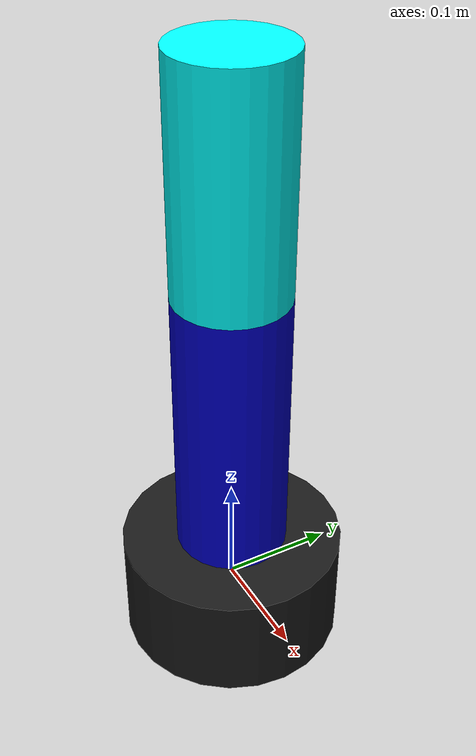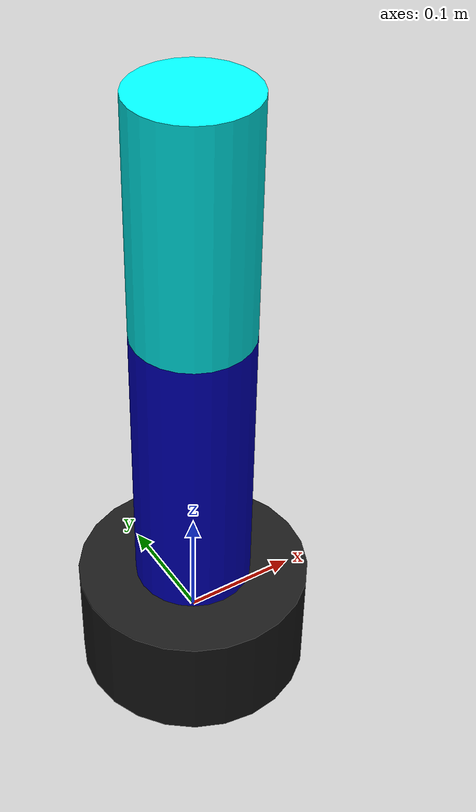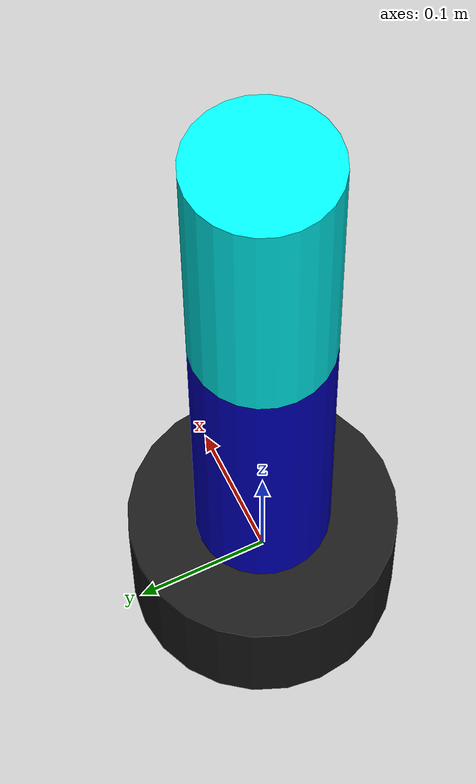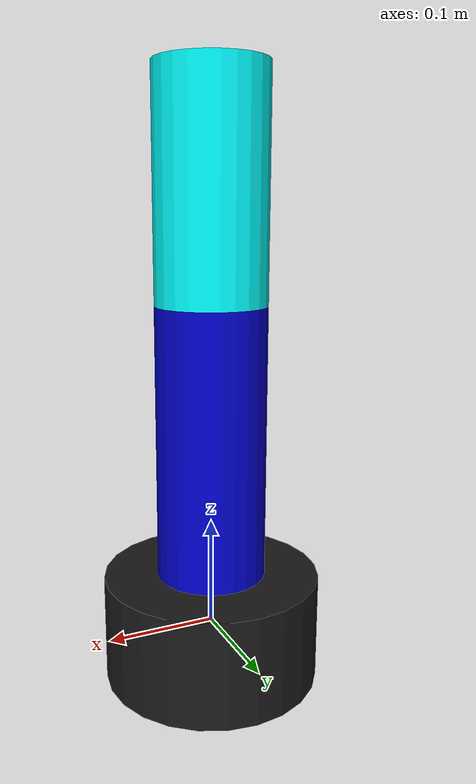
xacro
<?xml version="1.0"?>
<robot xmlns:xacro="http://www.ros.org/wiki/xacro" name="surgical_robot">
  <material name="blue"> <color rgba="0 0 0.8 1"/> </material>
  <material name="black"> <color rgba="0.1 0.1 0.1 1"/> </material>
  <material name="cyan"> <color rgba="0 1 1 1"/> </material>

  <link name="base_link">
    <visual>
      <geometry> <cylinder length="0.1" radius="0.1"/> </geometry>
      <material name="black"/>
    </visual>
  </link>

  <joint name="joint1" type="revolute">
    <parent link="base_link"/>
    <child link="link1"/>
    <origin xyz="0 0 0.05"/>
    <axis xyz="0 0 1"/>
    <limit lower="-3.14" upper="3.14" effort="10" velocity="1.0"/>
  </joint>

  <link name="link1">
    <visual>
      <geometry> <cylinder length="0.25" radius="0.05"/> </geometry>
      <origin xyz="0 0 0.125"/>
      <material name="blue"/>
    </visual>
  </link>

  <joint name="joint2" type="revolute">
    <parent link="link1"/>
    <child link="link2"/>
    <origin xyz="0 0 0.25"/>
    <axis xyz="0 1 0"/>
    <limit lower="-1.57" upper="1.57" effort="10" velocity="1.0"/>
  </joint>

  <link name="link2">
    <visual>
      <geometry> <cylinder length="0.2" radius="0.05"/> </geometry>
      <origin xyz="0 0 0.1"/>
      <material name="cyan"/>
    </visual>
  </link>
</robot>
